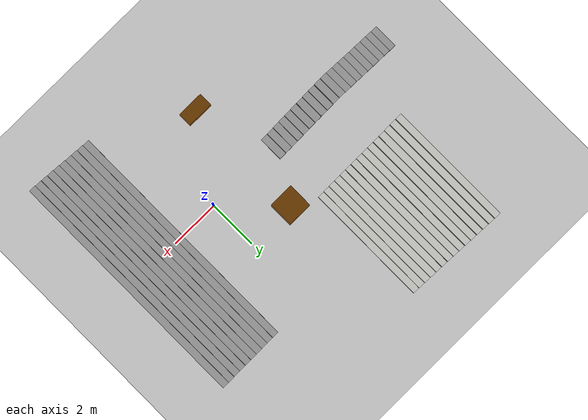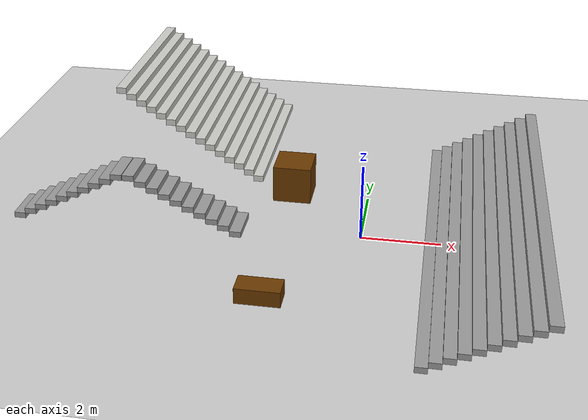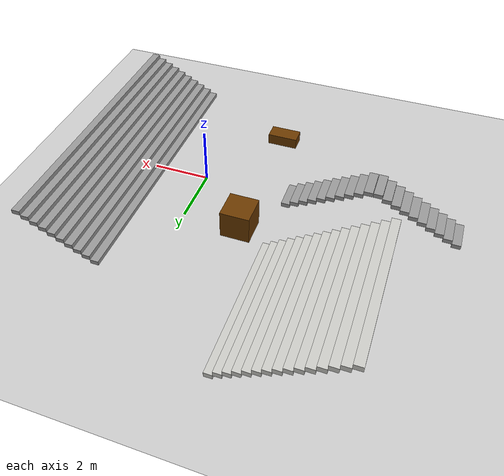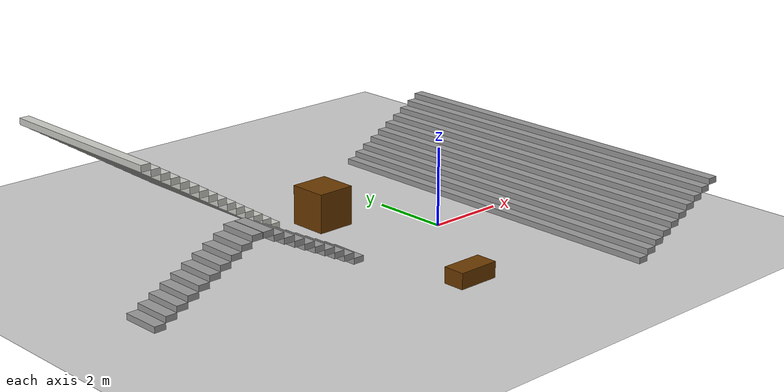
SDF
<?xml version="1.0" ?>
<sdf version="1.5">
    <world name="default">

        <physics type="ode">
            <max_step_size>0.0005</max_step_size>
            <real_time_factor>1</real_time_factor>
            <real_time_update_rate>2000</real_time_update_rate>
            <gravity>0 0 -9.81</gravity>
            <ode>
                <solver>
                    <type>quick</type>
                    <iters>50</iters>
                    <sor>1.3</sor>
                </solver>
                <constraints>
                    <cfm>0.0</cfm>
                    <erp>0.2</erp>
                    <contact_max_correcting_vel>10.0</contact_max_correcting_vel>
                    <contact_surface_layer>0.001</contact_surface_layer>
                </constraints>
            </ode>
        </physics>

        <scene>
        <sky>
            <clouds>
                <speed>12</speed>
            </clouds>
        </sky>
        </scene>
        <!-- A global light source -->
        <include>
            <uri>model://sun</uri>
        </include>
        <!-- A ground plane -->
        <include>
            <uri>model://ground_plane</uri>
        </include>
        <!-- environment blocks, obstacles or stairs -->
        <model name="static_environment">
        <static>true</static>
            <link name="static_box">
                <pose>-2 2 0.5 0 0 0</pose>
                <collision name="static_box_collision">
                    <geometry>
                        <box>
                            <size>1 1 1</size>
                        </box>
                    </geometry>
                </collision>
                <visual name="static_box_visual">
                    <geometry>
                        <box>
                            <size>1 1 1</size>
                        </box>
                    </geometry>
                    <material>
                        <ambient>0.2 0.2 0.2 1.0</ambient>
                        <diffuse>.421 0.225 0.0 1.0</diffuse>
                    </material>
                </visual>
            </link>

            <link name="static_box_1">
                <pose>-2 -3 0.2 0 0 0</pose>
                <collision name="static_box_collision">
                    <geometry>
                        <box>
                            <size>1.08 0.556 0.4</size>
                        </box>
                    </geometry>
                </collision>
                <visual name="static_box_visual">
                    <geometry>
                        <box>
                            <size>1.08 0.556 0.4</size>
                        </box>
                    </geometry>
                    <material>
                        <ambient>0.2 0.2 0.2 1.0</ambient>
                        <diffuse>.421 0.225 0.0 1.0</diffuse>
                    </material>
                </visual>
            </link>

            <link name='Stairs_0'>
                <pose>-5 5 0 0 0 0</pose>
                <scale>1 1 1</scale>
                <visual name='Stairs_0_Visual_0'>
                    <pose>1.89 -0.005 0.085 0 -0 -1.5708</pose>
                    <geometry>
                    <box>
                        <size>5 0.27 0.17</size>
                    </box>
                    </geometry>
                    <material>
                    <script>
                        <uri>file://media/materials/scripts/gazebo.material</uri>
                        <name>Gazebo/CeilingTiled</name>
                    </script>
                    <ambient>1 1 1 1</ambient>
                    </material>
                    <meta>
                    <layer>0</layer>
                    </meta>
                </visual>
                <collision name='Stairs_0_Collision_0'>
                    <geometry>
                    <box>
                        <size>5 0.27 0.17</size>
                    </box>
                    </geometry>
                    <pose>1.89 -0.005 0.085 0 -0 -1.5708</pose>
                </collision>
                <visual name='Stairs_0_Visual_1'>
                    <pose>1.62 -0.005 0.255 0 -0 -1.5708</pose>
                    <geometry>
                    <box>
                        <size>5 0.27 0.17</size>
                    </box>
                    </geometry>
                    <material>
                    <script>
                        <uri>file://media/materials/scripts/gazebo.material</uri>
                        <name>Gazebo/CeilingTiled</name>
                    </script>
                    <ambient>1 1 1 1</ambient>
                    </material>
                    <meta>
                    <layer>0</layer>
                    </meta>
                </visual>
                <collision name='Stairs_0_Collision_1'>
                    <geometry>
                    <box>
                        <size>5 0.27 0.17</size>
                    </box>
                    </geometry>
                    <pose>1.62 -0.005 0.255 0 -0 -1.5708</pose>
                </collision>
                <visual name='Stairs_0_Visual_2'>
                    <pose>1.35 -0.005 0.425 0 -0 -1.5708</pose>
                    <geometry>
                    <box>
                        <size>5 0.27 0.17</size>
                    </box>
                    </geometry>
                    <material>
                    <script>
                        <uri>file://media/materials/scripts/gazebo.material</uri>
                        <name>Gazebo/CeilingTiled</name>
                    </script>
                    <ambient>1 1 1 1</ambient>
                    </material>
                    <meta>
                    <layer>0</layer>
                    </meta>
                </visual>
                <collision name='Stairs_0_Collision_2'>
                    <geometry>
                    <box>
                        <size>5 0.27 0.17</size>
                    </box>
                    </geometry>
                    <pose>1.35 -0.005 0.425 0 -0 -1.5708</pose>
                </collision>
                <visual name='Stairs_0_Visual_3'>
                    <pose>1.08 -0.005 0.595 0 -0 -1.5708</pose>
                    <geometry>
                    <box>
                        <size>5 0.27 0.17</size>
                    </box>
                    </geometry>
                    <material>
                    <script>
                        <uri>file://media/materials/scripts/gazebo.material</uri>
                        <name>Gazebo/CeilingTiled</name>
                    </script>
                    <ambient>1 1 1 1</ambient>
                    </material>
                    <meta>
                    <layer>0</layer>
                    </meta>
                </visual>
                <collision name='Stairs_0_Collision_3'>
                    <geometry>
                    <box>
                        <size>5 0.27 0.17</size>
                    </box>
                    </geometry>
                    <pose>1.08 -0.005 0.595 0 -0 -1.5708</pose>
                </collision>
                <visual name='Stairs_0_Visual_4'>
                    <pose>0.81 -0.005 0.765 0 -0 -1.5708</pose>
                    <geometry>
                    <box>
                        <size>5 0.27 0.17</size>
                    </box>
                    </geometry>
                    <material>
                    <script>
                        <uri>file://media/materials/scripts/gazebo.material</uri>
                        <name>Gazebo/CeilingTiled</name>
                    </script>
                    <ambient>1 1 1 1</ambient>
                    </material>
                    <meta>
                    <layer>0</layer>
                    </meta>
                </visual>
                <collision name='Stairs_0_Collision_4'>
                    <geometry>
                    <box>
                        <size>5 0.27 0.17</size>
                    </box>
                    </geometry>
                    <pose>0.81 -0.005 0.765 0 -0 -1.5708</pose>
                </collision>
                <visual name='Stairs_0_Visual_5'>
                    <pose>0.54 -0.005 0.935 0 -0 -1.5708</pose>
                    <geometry>
                    <box>
                        <size>5 0.27 0.17</size>
                    </box>
                    </geometry>
                    <material>
                    <script>
                        <uri>file://media/materials/scripts/gazebo.material</uri>
                        <name>Gazebo/CeilingTiled</name>
                    </script>
                    <ambient>1 1 1 1</ambient>
                    </material>
                    <meta>
                    <layer>0</layer>
                    </meta>
                </visual>
                <collision name='Stairs_0_Collision_5'>
                    <geometry>
                    <box>
                        <size>5 0.27 0.17</size>
                    </box>
                    </geometry>
                    <pose>0.54 -0.005 0.935 0 -0 -1.5708</pose>
                </collision>
                <visual name='Stairs_0_Visual_6'>
                    <pose>0.27 -0.005 1.105 0 -0 -1.5708</pose>
                    <geometry>
                    <box>
                        <size>5 0.27 0.17</size>
                    </box>
                    </geometry>
                    <material>
                    <script>
                        <uri>file://media/materials/scripts/gazebo.material</uri>
                        <name>Gazebo/CeilingTiled</name>
                    </script>
                    <ambient>1 1 1 1</ambient>
                    </material>
                    <meta>
                    <layer>0</layer>
                    </meta>
                </visual>
                <collision name='Stairs_0_Collision_6'>
                    <geometry>
                    <box>
                        <size>5 0.27 0.17</size>
                    </box>
                    </geometry>
                    <pose>0.27 -0.005 1.105 0 -0 -1.5708</pose>
                </collision>
                <visual name='Stairs_0_Visual_7'>
                    <pose>-0 -0.005 1.275 0 -0 -1.5708</pose>
                    <geometry>
                    <box>
                        <size>5 0.27 0.17</size>
                    </box>
                    </geometry>
                    <material>
                    <script>
                        <uri>file://media/materials/scripts/gazebo.material</uri>
                        <name>Gazebo/CeilingTiled</name>
                    </script>
                    <ambient>1 1 1 1</ambient>
                    </material>
                    <meta>
                    <layer>0</layer>
                    </meta>
                </visual>
                <collision name='Stairs_0_Collision_7'>
                    <geometry>
                    <box>
                        <size>5 0.27 0.17</size>
                    </box>
                    </geometry>
                    <pose>-0 -0.005 1.275 0 -0 -1.5708</pose>
                </collision>
                <visual name='Stairs_0_Visual_8'>
                    <pose>-0.27 -0.005 1.445 0 -0 -1.5708</pose>
                    <geometry>
                    <box>
                        <size>5 0.27 0.17</size>
                    </box>
                    </geometry>
                    <material>
                    <script>
                        <uri>file://media/materials/scripts/gazebo.material</uri>
                        <name>Gazebo/CeilingTiled</name>
                    </script>
                    <ambient>1 1 1 1</ambient>
                    </material>
                    <meta>
                    <layer>0</layer>
                    </meta>
                </visual>
                <collision name='Stairs_0_Collision_8'>
                    <geometry>
                    <box>
                        <size>5 0.27 0.17</size>
                    </box>
                    </geometry>
                    <pose>-0.27 -0.005 1.445 0 -0 -1.5708</pose>
                </collision>
                <visual name='Stairs_0_Visual_9'>
                    <pose>-0.54 -0.005 1.615 0 -0 -1.5708</pose>
                    <geometry>
                    <box>
                        <size>5 0.27 0.17</size>
                    </box>
                    </geometry>
                    <material>
                    <script>
                        <uri>file://media/materials/scripts/gazebo.material</uri>
                        <name>Gazebo/CeilingTiled</name>
                    </script>
                    <ambient>1 1 1 1</ambient>
                    </material>
                    <meta>
                    <layer>0</layer>
                    </meta>
                </visual>
                <collision name='Stairs_0_Collision_9'>
                    <geometry>
                    <box>
                        <size>5 0.27 0.17</size>
                    </box>
                    </geometry>
                    <pose>-0.54 -0.005 1.615 0 -0 -1.5708</pose>
                </collision>
                <visual name='Stairs_0_Visual_10'>
                    <pose>-0.81 -0.005 1.785 0 -0 -1.5708</pose>
                    <geometry>
                    <box>
                        <size>5 0.27 0.17</size>
                    </box>
                    </geometry>
                    <material>
                    <script>
                        <uri>file://media/materials/scripts/gazebo.material</uri>
                        <name>Gazebo/CeilingTiled</name>
                    </script>
                    <ambient>1 1 1 1</ambient>
                    </material>
                    <meta>
                    <layer>0</layer>
                    </meta>
                </visual>
                <collision name='Stairs_0_Collision_10'>
                    <geometry>
                    <box>
                        <size>5 0.27 0.17</size>
                    </box>
                    </geometry>
                    <pose>-0.81 -0.005 1.785 0 -0 -1.5708</pose>
                </collision>
                <visual name='Stairs_0_Visual_11'>
                    <pose>-1.08 -0.005 1.955 0 -0 -1.5708</pose>
                    <geometry>
                    <box>
                        <size>5 0.27 0.17</size>
                    </box>
                    </geometry>
                    <material>
                    <script>
                        <uri>file://media/materials/scripts/gazebo.material</uri>
                        <name>Gazebo/CeilingTiled</name>
                    </script>
                    <ambient>1 1 1 1</ambient>
                    </material>
                    <meta>
                    <layer>0</layer>
                    </meta>
                </visual>
                <collision name='Stairs_0_Collision_11'>
                    <geometry>
                    <box>
                        <size>5 0.27 0.17</size>
                    </box>
                    </geometry>
                    <pose>-1.08 -0.005 1.955 0 -0 -1.5708</pose>
                </collision>
                <visual name='Stairs_0_Visual_12'>
                    <pose>-1.35 -0.005 2.125 0 -0 -1.5708</pose>
                    <geometry>
                    <box>
                        <size>5 0.27 0.17</size>
                    </box>
                    </geometry>
                    <material>
                    <script>
                        <uri>file://media/materials/scripts/gazebo.material</uri>
                        <name>Gazebo/CeilingTiled</name>
                    </script>
                    <ambient>1 1 1 1</ambient>
                    </material>
                    <meta>
                    <layer>0</layer>
                    </meta>
                </visual>
                <collision name='Stairs_0_Collision_12'>
                    <geometry>
                    <box>
                        <size>5 0.27 0.17</size>
                    </box>
                    </geometry>
                    <pose>-1.35 -0.005 2.125 0 -0 -1.5708</pose>
                </collision>
                <visual name='Stairs_0_Visual_13'>
                    <pose>-1.62 -0.005 2.295 0 -0 -1.5708</pose>
                    <geometry>
                    <box>
                        <size>5 0.27 0.17</size>
                    </box>
                    </geometry>
                    <material>
                    <script>
                        <uri>file://media/materials/scripts/gazebo.material</uri>
                        <name>Gazebo/CeilingTiled</name>
                    </script>
                    <ambient>1 1 1 1</ambient>
                    </material>
                    <meta>
                    <layer>0</layer>
                    </meta>
                </visual>
                <collision name='Stairs_0_Collision_13'>
                    <geometry>
                    <box>
                        <size>5 0.27 0.17</size>
                    </box>
                    </geometry>
                    <pose>-1.62 -0.005 2.295 0 -0 -1.5708</pose>
                </collision>
                <visual name='Stairs_0_Visual_14'>
                    <pose>-1.89 -0.005 2.465 0 -0 -1.5708</pose>
                    <geometry>
                    <box>
                        <size>5 0.27 0.17</size>
                    </box>
                    </geometry>
                    <material>
                    <script>
                        <uri>file://media/materials/scripts/gazebo.material</uri>
                        <name>Gazebo/CeilingTiled</name>
                    </script>
                    <ambient>1 1 1 1</ambient>
                    </material>
                    <meta>
                    <layer>0</layer>
                    </meta>
                </visual>
                <collision name='Stairs_0_Collision_14'>
                    <geometry>
                    <box>
                        <size>5 0.27 0.17</size>
                    </box>
                    </geometry>
                    <pose>-1.89 -0.005 2.465 0 -0 -1.5708</pose>
                </collision>
            </link>

            <link name='Stairs_1'>
            <pose>-3 0 0 0 0 0</pose>
            <visual name='Stairs_1_Visual_0'>
                <pose>-0.11669 -0 0.075 0 0 -1.5708</pose>
                <geometry>
                <box>
                    <size>1 0.3 0.15</size>
                </box>
                </geometry>
                <material>
                <script>
                    <uri>file://media/materials/scripts/gazebo.material</uri>
                    <name>Gazebo/Grey</name>
                </script>
                <ambient>1 1 1 1</ambient>
                </material>
                <meta>
                <layer>0</layer>
                </meta>
            </visual>
            <collision name='Stairs_1_Collision_0'>
                <geometry>
                <box>
                    <size>1 0.3 0.15</size>
                </box>
                </geometry>
                <pose>-0.11669 -0 0.075 0 0 -1.5708</pose>
            </collision>
            <visual name='Stairs_1_Visual_1'>
                <pose>-0.41669 -0 0.225 0 0 -1.5708</pose>
                <geometry>
                <box>
                    <size>1 0.3 0.15</size>
                </box>
                </geometry>
                <material>
                <script>
                    <uri>file://media/materials/scripts/gazebo.material</uri>
                    <name>Gazebo/Grey</name>
                </script>
                <ambient>1 1 1 1</ambient>
                </material>
                <meta>
                <layer>0</layer>
                </meta>
            </visual>
            <collision name='Stairs_1_Collision_1'>
                <geometry>
                <box>
                    <size>1 0.3 0.15</size>
                </box>
                </geometry>
                <pose>-0.41669 -0 0.225 0 0 -1.5708</pose>
            </collision>
            <visual name='Stairs_1_Visual_2'>
                <pose>-0.71669 -0 0.375 0 0 -1.5708</pose>
                <geometry>
                <box>
                    <size>1 0.3 0.15</size>
                </box>
                </geometry>
                <material>
                <script>
                    <uri>file://media/materials/scripts/gazebo.material</uri>
                    <name>Gazebo/Grey</name>
                </script>
                <ambient>1 1 1 1</ambient>
                </material>
                <meta>
                <layer>0</layer>
                </meta>
            </visual>
            <collision name='Stairs_1_Collision_2'>
                <geometry>
                <box>
                    <size>1 0.3 0.15</size>
                </box>
                </geometry>
                <pose>-0.71669 -0 0.375 0 0 -1.5708</pose>
            </collision>
            <visual name='Stairs_1_Visual_3'>
                <pose>-1.01669 -0 0.525 0 0 -1.5708</pose>
                <geometry>
                <box>
                    <size>1 0.3 0.15</size>
                </box>
                </geometry>
                <material>
                <script>
                    <uri>file://media/materials/scripts/gazebo.material</uri>
                    <name>Gazebo/Grey</name>
                </script>
                <ambient>1 1 1 1</ambient>
                </material>
                <meta>
                <layer>0</layer>
                </meta>
            </visual>
            <collision name='Stairs_1_Collision_3'>
                <geometry>
                <box>
                    <size>1 0.3 0.15</size>
                </box>
                </geometry>
                <pose>-1.01669 -0 0.525 0 0 -1.5708</pose>
            </collision>
            <visual name='Stairs_1_Visual_4'>
                <pose>-1.31669 -0 0.675 0 0 -1.5708</pose>
                <geometry>
                <box>
                    <size>1 0.3 0.15</size>
                </box>
                </geometry>
                <material>
                <script>
                    <uri>file://media/materials/scripts/gazebo.material</uri>
                    <name>Gazebo/Grey</name>
                </script>
                <ambient>1 1 1 1</ambient>
                </material>
                <meta>
                <layer>0</layer>
                </meta>
            </visual>
            <collision name='Stairs_1_Collision_4'>
                <geometry>
                <box>
                    <size>1 0.3 0.15</size>
                </box>
                </geometry>
                <pose>-1.31669 -0 0.675 0 0 -1.5708</pose>
            </collision>
            <visual name='Stairs_1_Visual_5'>
                <pose>-1.61669 0 0.825 0 0 -1.5708</pose>
                <geometry>
                <box>
                    <size>1 0.3 0.15</size>
                </box>
                </geometry>
                <material>
                <script>
                    <uri>file://media/materials/scripts/gazebo.material</uri>
                    <name>Gazebo/Grey</name>
                </script>
                <ambient>1 1 1 1</ambient>
                </material>
                <meta>
                <layer>0</layer>
                </meta>
            </visual>
            <collision name='Stairs_1_Collision_5'>
                <geometry>
                <box>
                    <size>1 0.3 0.15</size>
                </box>
                </geometry>
                <pose>-1.61669 0 0.825 0 0 -1.5708</pose>
            </collision>
            <visual name='Stairs_1_Visual_6'>
                <pose>-1.91669 0 0.975 0 0 -1.5708</pose>
                <geometry>
                <box>
                    <size>1 0.3 0.15</size>
                </box>
                </geometry>
                <material>
                <script>
                    <uri>file://media/materials/scripts/gazebo.material</uri>
                    <name>Gazebo/Grey</name>
                </script>
                <ambient>1 1 1 1</ambient>
                </material>
                <meta>
                <layer>0</layer>
                </meta>
            </visual>
            <collision name='Stairs_1_Collision_6'>
                <geometry>
                <box>
                    <size>1 0.3 0.15</size>
                </box>
                </geometry>
                <pose>-1.91669 0 0.975 0 0 -1.5708</pose>
            </collision>
            <visual name='Stairs_1_Visual_7'>
                <pose>-2.21669 0 1.125 0 0 -1.5708</pose>
                <geometry>
                <box>
                    <size>1 0.3 0.15</size>
                </box>
                </geometry>
                <material>
                <script>
                    <uri>file://media/materials/scripts/gazebo.material</uri>
                    <name>Gazebo/Grey</name>
                </script>
                <ambient>1 1 1 1</ambient>
                </material>
                <meta>
                <layer>0</layer>
                </meta>
            </visual>
            <collision name='Stairs_1_Collision_7'>
                <geometry>
                <box>
                    <size>1 0.3 0.15</size>
                </box>
                </geometry>
                <pose>-2.21669 0 1.125 0 0 -1.5708</pose>
            </collision>
            <visual name='Stairs_1_Visual_8'>
                <pose>-2.51669 0 1.275 0 0 -1.5708</pose>
                <geometry>
                <box>
                    <size>1 0.3 0.15</size>
                </box>
                </geometry>
                <material>
                <script>
                    <uri>file://media/materials/scripts/gazebo.material</uri>
                    <name>Gazebo/Grey</name>
                </script>
                <ambient>1 1 1 1</ambient>
                </material>
                <meta>
                <layer>0</layer>
                </meta>
            </visual>
            <collision name='Stairs_1_Collision_8'>
                <geometry>
                <box>
                    <size>1 0.3 0.15</size>
                </box>
                </geometry>
                <pose>-2.51669 0 1.275 0 0 -1.5708</pose>
            </collision>
            <visual name='Stairs_1_Visual_9'>
                <pose>-2.81669 0 1.425 0 0 -1.5708</pose>
                <geometry>
                <box>
                    <size>1 0.3 0.15</size>
                </box>
                </geometry>
                <material>
                <script>
                    <uri>file://media/materials/scripts/gazebo.material</uri>
                    <name>Gazebo/Grey</name>
                </script>
                <ambient>1 1 1 1</ambient>
                </material>
                <meta>
                <layer>0</layer>
                </meta>
            </visual>
            <collision name='Stairs_1_Collision_9'>
                <geometry>
                <box>
                    <size>1 0.3 0.15</size>
                </box>
                </geometry>
                <pose>-2.81669 0 1.425 0 0 -1.5708</pose>
            </collision>
            </link>

            <link name='Stairs_2'>
            <pose>-4.5 0 0 0 0 0</pose>
            <visual name='Stairs_1_Visual_0'>
                <pose>-4.33259 -0 0.075 0 -0 1.5708</pose>
                <geometry>
                <box>
                    <size>1 0.3 0.15</size>
                </box>
                </geometry>
                <material>
                <script>
                    <uri>file://media/materials/scripts/gazebo.material</uri>
                    <name>Gazebo/Grey</name>
                </script>
                <ambient>1 1 1 1</ambient>
                </material>
                <meta>
                <layer>0</layer>
                </meta>
            </visual>
            <collision name='Stairs_2_Collision_0'>
                <geometry>
                <box>
                    <size>1 0.3 0.15</size>
                </box>
                </geometry>
                <pose>-4.33259 -0 0.075 0 -0 1.5708</pose>
            </collision>
            <visual name='Stairs_2_Visual_1'>
                <pose>-4.03259 -0 0.225 0 -0 1.5708</pose>
                <geometry>
                <box>
                    <size>1 0.3 0.15</size>
                </box>
                </geometry>
                <material>
                <script>
                    <uri>file://media/materials/scripts/gazebo.material</uri>
                    <name>Gazebo/Grey</name>
                </script>
                <ambient>1 1 1 1</ambient>
                </material>
                <meta>
                <layer>0</layer>
                </meta>
            </visual>
            <collision name='Stairs_2_Collision_1'>
                <geometry>
                <box>
                    <size>1 0.3 0.15</size>
                </box>
                </geometry>
                <pose>-4.03259 -0 0.225 0 -0 1.5708</pose>
            </collision>
            <visual name='Stairs_2_Visual_2'>
                <pose>-3.73259 -0 0.375 0 -0 1.5708</pose>
                <geometry>
                <box>
                    <size>1 0.3 0.15</size>
                </box>
                </geometry>
                <material>
                <script>
                    <uri>file://media/materials/scripts/gazebo.material</uri>
                    <name>Gazebo/Grey</name>
                </script>
                <ambient>1 1 1 1</ambient>
                </material>
                <meta>
                <layer>0</layer>
                </meta>
            </visual>
            <collision name='Stairs_2_Collision_2'>
                <geometry>
                <box>
                    <size>1 0.3 0.15</size>
                </box>
                </geometry>
                <pose>-3.73259 -0 0.375 0 -0 1.5708</pose>
            </collision>
            <visual name='Stairs_2_Visual_3'>
                <pose>-3.43259 -0 0.525 0 -0 1.5708</pose>
                <geometry>
                <box>
                    <size>1 0.3 0.15</size>
                </box>
                </geometry>
                <material>
                <script>
                    <uri>file://media/materials/scripts/gazebo.material</uri>
                    <name>Gazebo/Grey</name>
                </script>
                <ambient>1 1 1 1</ambient>
                </material>
                <meta>
                <layer>0</layer>
                </meta>
            </visual>
            <collision name='Stairs_2_Collision_3'>
                <geometry>
                <box>
                    <size>1 0.3 0.15</size>
                </box>
                </geometry>
                <pose>-3.43259 -0 0.525 0 -0 1.5708</pose>
            </collision>
            <visual name='Stairs_2_Visual_4'>
                <pose>-3.13259 -0 0.675 0 -0 1.5708</pose>
                <geometry>
                <box>
                    <size>1 0.3 0.15</size>
                </box>
                </geometry>
                <material>
                <script>
                    <uri>file://media/materials/scripts/gazebo.material</uri>
                    <name>Gazebo/Grey</name>
                </script>
                <ambient>1 1 1 1</ambient>
                </material>
                <meta>
                <layer>0</layer>
                </meta>
            </visual>
            <collision name='Stairs_2_Collision_4'>
                <geometry>
                <box>
                    <size>1 0.3 0.15</size>
                </box>
                </geometry>
                <pose>-3.13259 -0 0.675 0 -0 1.5708</pose>
            </collision>
            <visual name='Stairs_2_Visual_5'>
                <pose>-2.83259 0 0.825 0 -0 1.5708</pose>
                <geometry>
                <box>
                    <size>1 0.3 0.15</size>
                </box>
                </geometry>
                <material>
                <script>
                    <uri>file://media/materials/scripts/gazebo.material</uri>
                    <name>Gazebo/Grey</name>
                </script>
                <ambient>1 1 1 1</ambient>
                </material>
                <meta>
                <layer>0</layer>
                </meta>
            </visual>
            <collision name='Stairs_2_Collision_5'>
                <geometry>
                <box>
                    <size>1 0.3 0.15</size>
                </box>
                </geometry>
                <pose>-2.83259 0 0.825 0 -0 1.5708</pose>
            </collision>
            <visual name='Stairs_2_Visual_6'>
                <pose>-2.53259 0 0.975 0 -0 1.5708</pose>
                <geometry>
                <box>
                    <size>1 0.3 0.15</size>
                </box>
                </geometry>
                <material>
                <script>
                    <uri>file://media/materials/scripts/gazebo.material</uri>
                    <name>Gazebo/Grey</name>
                </script>
                <ambient>1 1 1 1</ambient>
                </material>
                <meta>
                <layer>0</layer>
                </meta>
            </visual>
            <collision name='Stairs_2_Collision_6'>
                <geometry>
                <box>
                    <size>1 0.3 0.15</size>
                </box>
                </geometry>
                <pose>-2.53259 0 0.975 0 -0 1.5708</pose>
            </collision>
            <visual name='Stairs_2_Visual_7'>
                <pose>-2.23259 0 1.125 0 -0 1.5708</pose>
                <geometry>
                <box>
                    <size>1 0.3 0.15</size>
                </box>
                </geometry>
                <material>
                <script>
                    <uri>file://media/materials/scripts/gazebo.material</uri>
                    <name>Gazebo/Grey</name>
                </script>
                <ambient>1 1 1 1</ambient>
                </material>
                <meta>
                <layer>0</layer>
                </meta>
            </visual>
            <collision name='Stairs_2_Collision_7'>
                <geometry>
                <box>
                    <size>1 0.3 0.15</size>
                </box>
                </geometry>
                <pose>-2.23259 0 1.125 0 -0 1.5708</pose>
            </collision>
            <visual name='Stairs_2_Visual_8'>
                <pose>-1.93259 0 1.275 0 -0 1.5708</pose>
                <geometry>
                <box>
                    <size>1 0.3 0.15</size>
                </box>
                </geometry>
                <material>
                <script>
                    <uri>file://media/materials/scripts/gazebo.material</uri>
                    <name>Gazebo/Grey</name>
                </script>
                <ambient>1 1 1 1</ambient>
                </material>
                <meta>
                <layer>0</layer>
                </meta>
            </visual>
            <collision name='Stairs_2_Collision_8'>
                <geometry>
                <box>
                    <size>1 0.3 0.15</size>
                </box>
                </geometry>
                <pose>-1.93259 0 1.275 0 -0 1.5708</pose>
            </collision>
            <visual name='Stairs_2_Visual_9'>
                <pose>-1.63259 0 1.425 0 -0 1.5708</pose>
                <geometry>
                <box>
                    <size>1 0.3 0.15</size>
                </box>
                </geometry>
                <material>
                <script>
                    <uri>file://media/materials/scripts/gazebo.material</uri>
                    <name>Gazebo/Grey</name>
                </script>
                <ambient>1 1 1 1</ambient>
                </material>
                <meta>
                <layer>0</layer>
                </meta>
            </visual>
            <collision name='Stairs_2_Collision_9'>
                <geometry>
                <box>
                    <size>1 0.3 0.15</size>
                </box>
                </geometry>
                <pose>-1.63259 0 1.425 0 -0 1.5708</pose>
            </collision>
            </link>

            <link name='Stairs'>
                <pose>3 0 0 0 0 0</pose>
                <scale>1 1 1</scale>
                <visual name='Stairs_Visual_0'>
                    <pose>-1.26 -0 0.075 0 -0 1.5708</pose>
                    <geometry>
                    <box>
                        <size>10 0.28 0.15</size>
                    </box>
                    </geometry>
                    <material>
                    <script>
                        <uri>file://media/materials/scripts/gazebo.material</uri>
                        <name>Gazebo/Grey</name>
                    </script>
                    <ambient>1 1 1 1</ambient>
                    </material>
                    <meta>
                    <layer>0</layer>
                    </meta>
                </visual>
                <collision name='Stairs_Collision_0'>
                    <geometry>
                    <box>
                        <size>10 0.28 0.15</size>
                    </box>
                    </geometry>
                    <pose>-1.26 -0 0.075 0 -0 1.5708</pose>
                </collision>
                <visual name='Stairs_Visual_1'>
                    <pose>-0.98 -0 0.225 0 -0 1.5708</pose>
                    <geometry>
                    <box>
                        <size>10 0.28 0.15</size>
                    </box>
                    </geometry>
                    <material>
                    <script>
                        <uri>file://media/materials/scripts/gazebo.material</uri>
                        <name>Gazebo/Grey</name>
                    </script>
                    <ambient>1 1 1 1</ambient>
                    </material>
                    <meta>
                    <layer>0</layer>
                    </meta>
                </visual>
                <collision name='Stairs_Collision_1'>
                    <geometry>
                    <box>
                        <size>10 0.28 0.15</size>
                    </box>
                    </geometry>
                    <pose>-0.98 -0 0.225 0 -0 1.5708</pose>
                </collision>
                <visual name='Stairs_Visual_2'>
                    <pose>-0.7 -0 0.375 0 -0 1.5708</pose>
                    <geometry>
                    <box>
                        <size>10 0.28 0.15</size>
                    </box>
                    </geometry>
                    <material>
                    <script>
                        <uri>file://media/materials/scripts/gazebo.material</uri>
                        <name>Gazebo/Grey</name>
                    </script>
                    <ambient>1 1 1 1</ambient>
                    </material>
                    <meta>
                    <layer>0</layer>
                    </meta>
                </visual>
                <collision name='Stairs_Collision_2'>
                    <geometry>
                    <box>
                        <size>10 0.28 0.15</size>
                    </box>
                    </geometry>
                    <pose>-0.7 -0 0.375 0 -0 1.5708</pose>
                </collision>
                <visual name='Stairs_Visual_3'>
                    <pose>-0.42 -0 0.525 0 -0 1.5708</pose>
                    <geometry>
                    <box>
                        <size>10 0.28 0.15</size>
                    </box>
                    </geometry>
                    <material>
                    <script>
                        <uri>file://media/materials/scripts/gazebo.material</uri>
                        <name>Gazebo/Grey</name>
                    </script>
                    <ambient>1 1 1 1</ambient>
                    </material>
                    <meta>
                    <layer>0</layer>
                    </meta>
                </visual>
                <collision name='Stairs_Collision_3'>
                    <geometry>
                    <box>
                        <size>10 0.28 0.15</size>
                    </box>
                    </geometry>
                    <pose>-0.42 -0 0.525 0 -0 1.5708</pose>
                </collision>
                <visual name='Stairs_Visual_4'>
                    <pose>-0.14 -0 0.675 0 -0 1.5708</pose>
                    <geometry>
                    <box>
                        <size>10 0.28 0.15</size>
                    </box>
                    </geometry>
                    <material>
                    <script>
                        <uri>file://media/materials/scripts/gazebo.material</uri>
                        <name>Gazebo/Grey</name>
                    </script>
                    <ambient>1 1 1 1</ambient>
                    </material>
                    <meta>
                    <layer>0</layer>
                    </meta>
                </visual>
                <collision name='Stairs_Collision_4'>
                    <geometry>
                    <box>
                        <size>10 0.28 0.15</size>
                    </box>
                    </geometry>
                    <pose>-0.14 -0 0.675 0 -0 1.5708</pose>
                </collision>
                <visual name='Stairs_Visual_5'>
                    <pose>0.14 0 0.825 0 -0 1.5708</pose>
                    <geometry>
                    <box>
                        <size>10 0.28 0.15</size>
                    </box>
                    </geometry>
                    <material>
                    <script>
                        <uri>file://media/materials/scripts/gazebo.material</uri>
                        <name>Gazebo/Grey</name>
                    </script>
                    <ambient>1 1 1 1</ambient>
                    </material>
                    <meta>
                    <layer>0</layer>
                    </meta>
                </visual>
                <collision name='Stairs_Collision_5'>
                    <geometry>
                    <box>
                        <size>10 0.28 0.15</size>
                    </box>
                    </geometry>
                    <pose>0.14 0 0.825 0 -0 1.5708</pose>
                </collision>
                <visual name='Stairs_Visual_6'>
                    <pose>0.42 0 0.975 0 -0 1.5708</pose>
                    <geometry>
                    <box>
                        <size>10 0.28 0.15</size>
                    </box>
                    </geometry>
                    <material>
                    <script>
                        <uri>file://media/materials/scripts/gazebo.material</uri>
                        <name>Gazebo/Grey</name>
                    </script>
                    <ambient>1 1 1 1</ambient>
                    </material>
                    <meta>
                    <layer>0</layer>
                    </meta>
                </visual>
                <collision name='Stairs_Collision_6'>
                    <geometry>
                    <box>
                        <size>10 0.28 0.15</size>
                    </box>
                    </geometry>
                    <pose>0.42 0 0.975 0 -0 1.5708</pose>
                </collision>
                <visual name='Stairs_Visual_7'>
                    <pose>0.7 0 1.125 0 -0 1.5708</pose>
                    <geometry>
                    <box>
                        <size>10 0.28 0.15</size>
                    </box>
                    </geometry>
                    <material>
                    <script>
                        <uri>file://media/materials/scripts/gazebo.material</uri>
                        <name>Gazebo/Grey</name>
                    </script>
                    <ambient>1 1 1 1</ambient>
                    </material>
                    <meta>
                    <layer>0</layer>
                    </meta>
                </visual>
                <collision name='Stairs_Collision_7'>
                    <geometry>
                    <box>
                        <size>10 0.28 0.15</size>
                    </box>
                    </geometry>
                    <pose>0.7 0 1.125 0 -0 1.5708</pose>
                </collision>
                <visual name='Stairs_Visual_8'>
                    <pose>0.98 0 1.275 0 -0 1.5708</pose>
                    <geometry>
                    <box>
                        <size>10 0.28 0.15</size>
                    </box>
                    </geometry>
                    <material>
                    <script>
                        <uri>file://media/materials/scripts/gazebo.material</uri>
                        <name>Gazebo/Grey</name>
                    </script>
                    <ambient>1 1 1 1</ambient>
                    </material>
                    <meta>
                    <layer>0</layer>
                    </meta>
                </visual>
                <collision name='Stairs_Collision_8'>
                    <geometry>
                    <box>
                        <size>10 0.28 0.15</size>
                    </box>
                    </geometry>
                    <pose>0.98 0 1.275 0 -0 1.5708</pose>
                </collision>
                <visual name='Stairs_Visual_9'>
                    <pose>1.26 0 1.425 0 -0 1.5708</pose>
                    <geometry>
                    <box>
                        <size>10 0.28 0.15</size>
                    </box>
                    </geometry>
                    <material>
                    <script>
                        <uri>file://media/materials/scripts/gazebo.material</uri>
                        <name>Gazebo/Grey</name>
                    </script>
                    <ambient>1 1 1 1</ambient>
                    </material>
                    <meta>
                    <layer>0</layer>
                    </meta>
                </visual>
                <collision name='Stairs_Collision_9'>
                    <geometry>
                    <box>
                        <size>10 0.28 0.15</size>
                    </box>
                    </geometry>
                    <pose>1.26 0 1.425 0 -0 1.5708</pose>
                </collision>
            </link>
        </model>

    </world>
</sdf>
